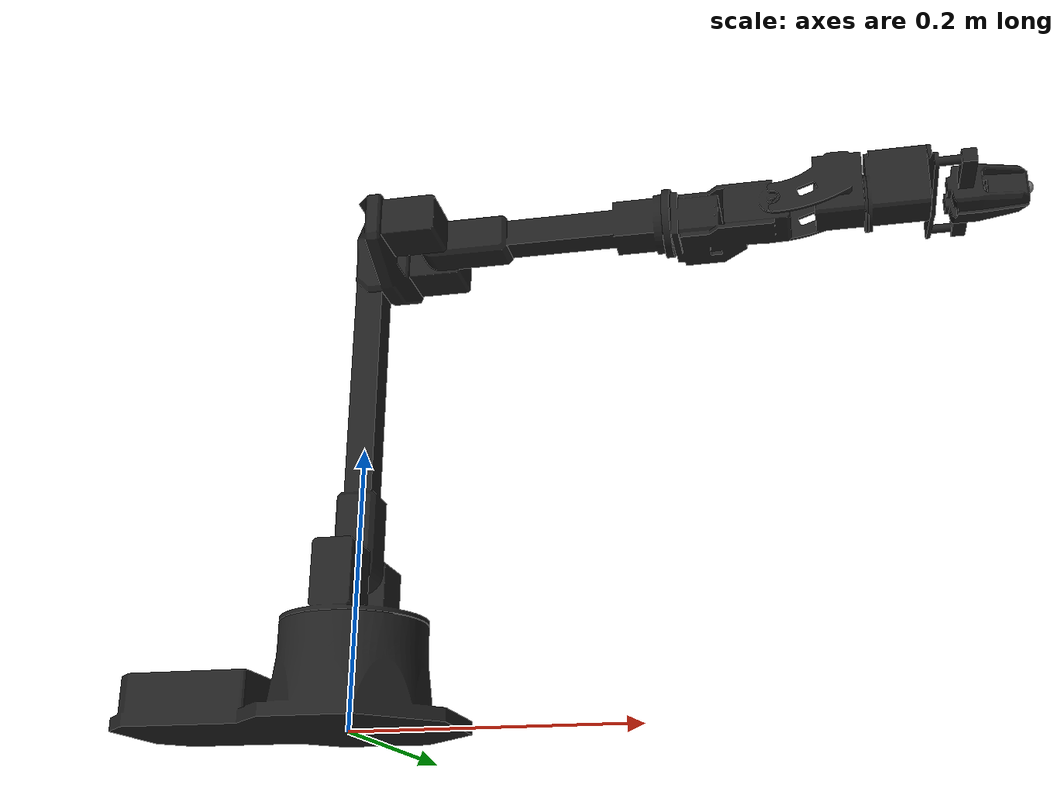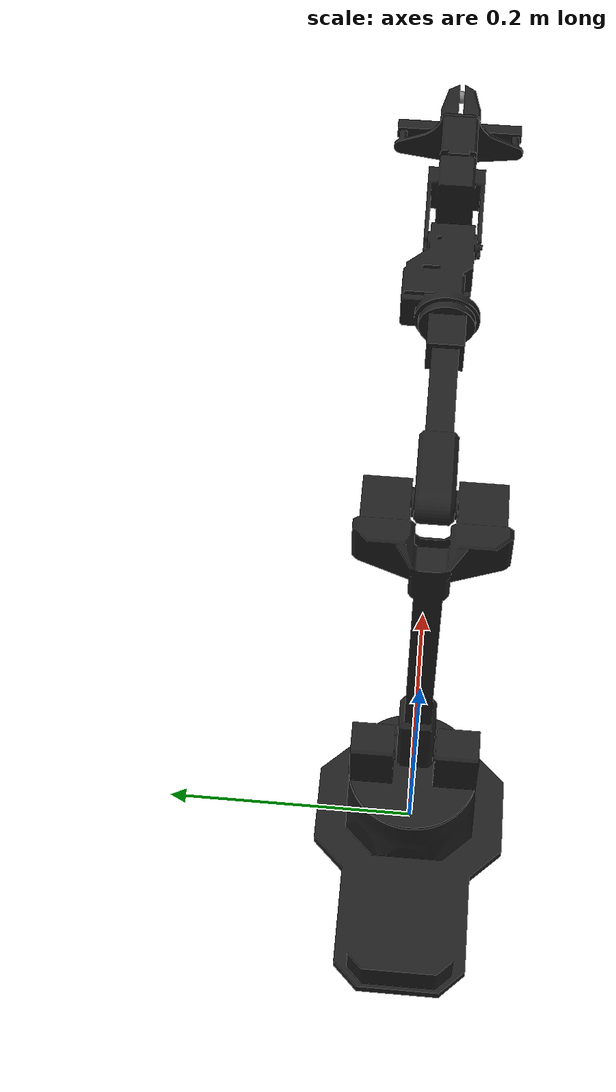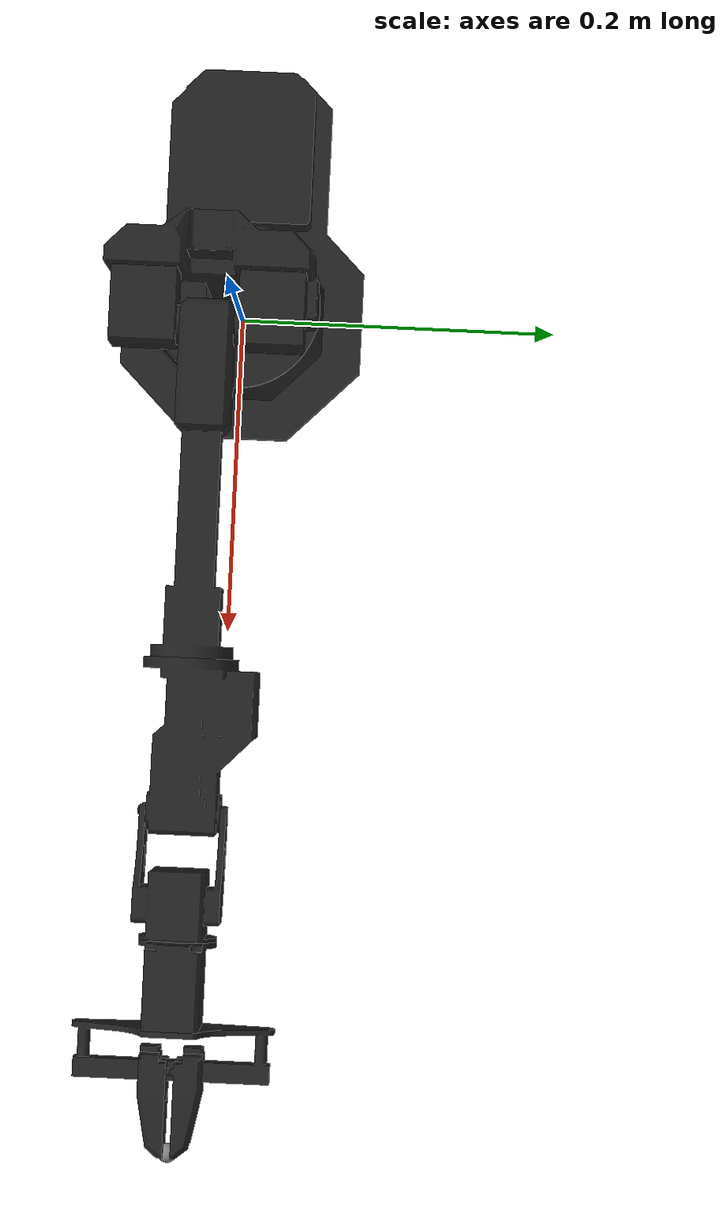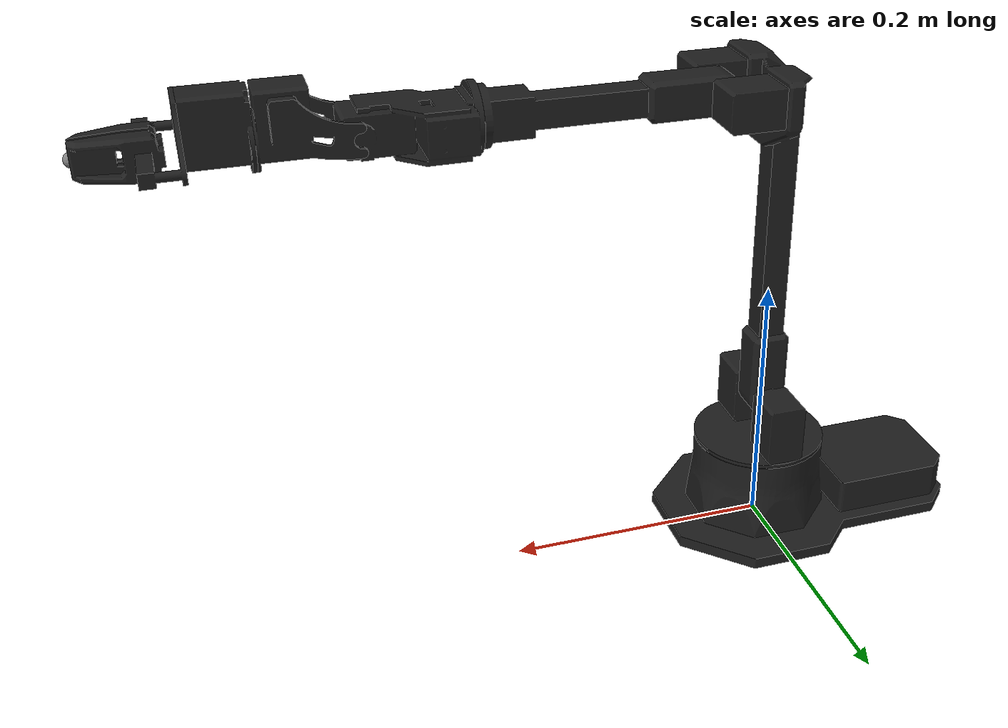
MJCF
<mujoco model="wx250s">
  <custom>
    <!-- Controller gripper defaults: open and closed actuator control values. -->
    <numeric name="critter_gripper:gripper" data="0.022 0"/>
  </custom>
  <compiler angle="radian" meshdir="assets" texturedir="assets" autolimits="true"/>

  <option integrator="implicitfast" cone="elliptic" impratio="10"/>

  <asset>
    <texture name="interbotix_black" type="2d" file="interbotix_black.png"/>
    <material name="black" texture="interbotix_black" rgba="1 1 1 1" metallic="1" roughness="0.54"/>

    <mesh file="wx250s_1_base.stl" class="wx250s"/>
    <mesh file="wx250s_2_shoulder.stl" class="wx250s"/>
    <mesh file="wx250s_3_upper_arm.stl" class="wx250s"/>
    <mesh file="wx250s_4_upper_forearm.stl" class="wx250s"/>
    <mesh file="wx250s_5_lower_forearm.stl" class="wx250s"/>
    <mesh file="wx250s_6_wrist.stl" class="wx250s"/>
    <mesh file="wx250s_7_gripper.stl" class="wx250s"/>
    <mesh file="wx250s_8_gripper_prop.stl" class="wx250s"/>
    <mesh file="wx250s_9_gripper_bar.stl" class="wx250s"/>
    <mesh file="wx250s_10_gripper_finger.stl" class="wx250s"/>
  </asset>

  <default>
    <default class="wx250s">
      <mesh scale="0.001 0.001 0.001"/>
      <joint axis="0 1 0" frictionloss="0.1" armature="0.1"/>
      <position kp="50" inheritrange="1" dampratio="0.95" forcerange="-35 35"/>
      <default class="visual">
        <geom type="mesh" contype="0" conaffinity="0" density="0" group="2" material="black"/>
      </default>
      <default class="collision">
        <geom group="3" type="mesh"/>
        <default class="sphere_collision">
          <geom type="sphere" size="0.0006" rgba="1 0 0 1" friction="2.5 0.05 0.01" condim="4"/>
        </default>
      </default>
    </default>
  </default>

  <worldbody>
    <body name="wx250s/base_link" childclass="wx250s">
      <site name="robot_base_attachment_site" pos="0 0 0" quat="1 0 0 0" size="0.025" group="4"/>
      <inertial pos="-0.0380446 0.000613892 0.0193354" quat="0.509292 0.490887 -0.496359 0.503269" mass="0.538736"
        diaginertia="0.00252518 0.00211519 0.000690737"/>
      <geom quat="1 0 0 1" mesh="wx250s_1_base" class="visual"/>
      <geom quat="1 0 0 1" mesh="wx250s_1_base" class="collision"/>
      <body name="wx250s/shoulder_link" pos="0 0 0.072">
        <inertial pos="2.23482e-05 4.14609e-05 0.0066287" quat="0.0130352 0.706387 0.012996 0.707586" mass="0.480879"
          diaginertia="0.000588946 0.000555655 0.000378999"/>
        <joint name="waist" axis="0 0 1" range="-3.14158 3.14158"/>
        <geom pos="0 0 -0.003" quat="1 0 0 1" mesh="wx250s_2_shoulder" class="visual"/>
        <geom pos="0 0 -0.003" quat="1 0 0 1" mesh="wx250s_2_shoulder" class="collision"/>
        <body name="wx250s/upper_arm_link" pos="0 0 0.03865">
          <inertial pos="0.0171605 2.725e-07 0.191323" quat="0.705539 0.0470667 -0.0470667 0.705539" mass="0.430811"
            diaginertia="0.00364425 0.003463 0.000399348"/>
          <joint name="shoulder" axis="0 1 0" range="-1.88496 1.98968"/>
          <geom quat="1 0 0 1" mesh="wx250s_3_upper_arm" class="visual"/>
          <geom quat="1 0 0 1" mesh="wx250s_3_upper_arm" class="collision"/>
          <body name="wx250s/upper_forearm_link" pos="0.04975 0 0.25">
            <inertial pos="0.107963 0.000115876 0" quat="0.000980829 0.707106 -0.000980829 0.707106" mass="0.234589"
              diaginertia="0.000888 0.000887807 3.97035e-05"/>
            <joint name="elbow" axis="0 1 0" range="-2.14675 1.6057"/>
            <geom mesh="wx250s_4_upper_forearm" class="visual"/>
            <geom mesh="wx250s_4_upper_forearm" class="collision"/>
            <body name="wx250s/lower_forearm_link" pos="0.175 0 0">
              <inertial pos="0.0374395 0.00522252 0" quat="-0.0732511 0.703302 0.0732511 0.703302" mass="0.220991"
                diaginertia="0.0001834 0.000172527 5.88633e-05"/>
              <joint name="forearm_roll" axis="1 0 0" range="-3.14158 3.14158"/>
              <geom quat="0 1 0 0" mesh="wx250s_5_lower_forearm" class="visual"/>
              <geom quat="0 1 0 0" mesh="wx250s_5_lower_forearm" class="collision"/>
              <body name="wx250s/wrist_link" pos="0.075 0 0">
                <inertial pos="0.04236 -1.0663e-05 0.010577" quat="0.608721 0.363497 -0.359175 0.606895" mass="0.084957"
                  diaginertia="3.29057e-05 3.082e-05 2.68343e-05"/>
                <joint name="wrist_angle" axis="0 1 0" range="-1.74533 2.14675"/>
                <geom quat="1 0 0 1" mesh="wx250s_6_wrist" class="visual"/>
                <geom quat="1 0 0 1" mesh="wx250s_6_wrist" class="collision"/>
                  <body name="wx250s/gripper_link" pos="0.065 0 0">
                  <inertial pos="0.0325296 4.2061e-07 0.0090959" quat="0.546081 0.419626 0.62801 0.362371"
                    mass="0.110084" diaginertia="0.00307592 0.00307326 0.0030332"/>
                  <joint name="wrist_rotate" axis="1 0 0" range="-3.14158 3.14158"/>
                  <geom pos="-0.02 0 0" quat="1 0 0 1" mesh="wx250s_7_gripper" class="visual"/>
                  <geom pos="-0.02 0 0" quat="1 0 0 1" mesh="wx250s_7_gripper" class="collision"/>
                  <geom pos="-0.02 0 0" quat="1 0 0 1" mesh="wx250s_9_gripper_bar" class="visual"/>
                  <geom pos="-0.02 0 0" quat="1 0 0 1" mesh="wx250s_9_gripper_bar" class="collision"/>
                  <site name="gripper_target" pos="0.108 0.000 0.000" quat="1 0 0 0"/>
                  <body name="wx250s/left_finger_link" pos="0.066 0.011 0">
                    <inertial pos="0.013816 0 0" quat="0.705384 0.705384 -0.0493271 -0.0493271" mass="0.016246"
                      diaginertia="4.79509e-06 3.7467e-06 1.48651e-06"/>
                    <joint name="left_finger" axis="0 1 0" type="slide" range="0 0.022" damping="6" armature="0.02"/>
                    <geom pos="0 0.005 0" quat="0 0 0 -1" mesh="wx250s_10_gripper_finger" class="visual"/>
                    <geom pos="0 0.005 0" quat="0 0 0 -1" mesh="wx250s_10_gripper_finger" class="collision"/>
                    <geom name="left/left_g0" pos="0.042 -0.009 0.012" class="sphere_collision"/>
                    <geom name="left/left_g1" pos="0.042 -0.009 -0.012" class="sphere_collision"/>
                  </body>
                  <body name="wx250s/right_finger_link" pos="0.066 -0.011 0">
                    <inertial pos="0.013816 0 0" quat="0.705384 0.705384 0.0493271 0.0493271" mass="0.016246"
                      diaginertia="4.79509e-06 3.7467e-06 1.48651e-06"/>
                    <joint name="right_finger" axis="0 1 0" type="slide" range="-0.022 0" damping="6" armature="0.02"/>
                    <geom pos="0 -0.005 0" quat="0 0 1 0" mesh="wx250s_10_gripper_finger" class="visual"/>
                    <geom pos="0 -0.005 0" quat="0 0 1 0" mesh="wx250s_10_gripper_finger" class="collision"/>
                    <geom name="right/right_g0" pos="0.042 0.009 0.012" class="sphere_collision"/>
                    <geom name="right/right_g1" pos="0.042 0.009 -0.012" class="sphere_collision"/>
                  </body>
                </body>
              </body>
            </body>
          </body>
        </body>
      </body>
    </body>
  </worldbody>

  <contact>
    <exclude body1="wx250s/base_link" body2="wx250s/shoulder_link"/>
  </contact>

  <equality>
    <joint joint1="left_finger" joint2="right_finger" polycoef="0 -1 0 0 0" solref="0.004 1" solimp="0.95 0.99 0.001"/>
  </equality>

  <actuator>
    <position class="wx250s" name="waist" joint="waist"/>
    <position class="wx250s" name="shoulder" joint="shoulder"/>
    <position class="wx250s" name="elbow" joint="elbow"/>
    <position class="wx250s" name="forearm_roll" joint="forearm_roll"/>
    <position class="wx250s" name="wrist_angle" joint="wrist_angle"/>
    <position class="wx250s" name="wrist_rotate" joint="wrist_rotate"/>
    <position class="wx250s" name="gripper" joint="left_finger" kp="400"/>
  </actuator>

  <keyframe>
    <key name="home" qpos="0 -0.96 1.16 0 -0.3 0 0 0" ctrl="0 -0.96 1.16 0 -0.3 0 0"/>
  </keyframe>
</mujoco>
